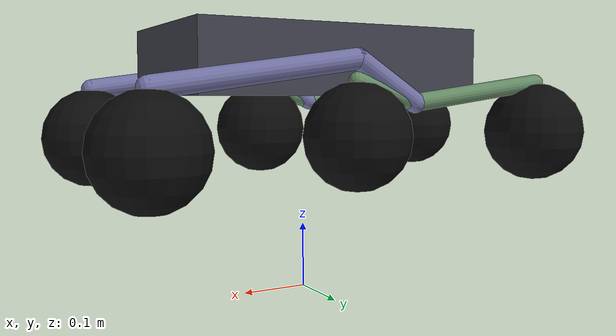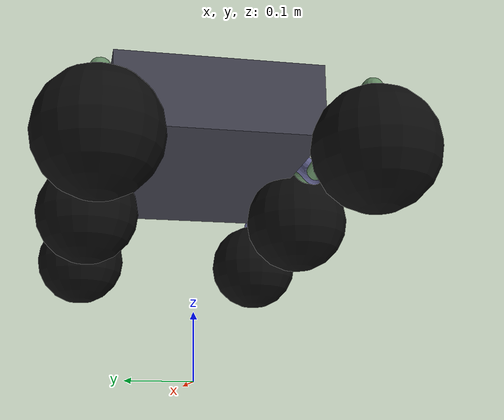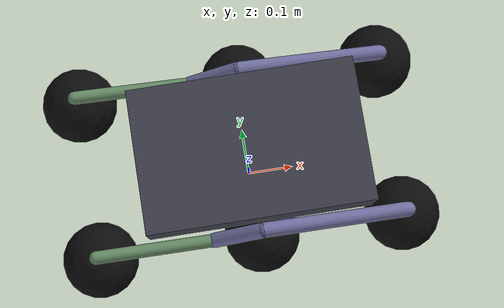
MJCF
<mujoco model="rocker_bogie_3d_diff">
  <compiler angle="degree" inertiafromgeom="true" autolimits="true"/>
  <option timestep="0.002" gravity="0 0 -9.81" solver="Newton" iterations="120"/>

  <default>
    <geom condim="4" friction="1.3 0.01 0.0001" solref="0.004 1" solimp="0.95 0.99 0.001"
          contype="0" conaffinity="0"/>
    <joint damping="2" armature="0.02" limited="false"/>
  </default>

  <asset>
    <material name="mat_chassis" rgba="0.25 0.25 0.30 1"/>
    <material name="mat_rocker"  rgba="0.45 0.45 0.65 1"/>
    <material name="mat_bogie"   rgba="0.40 0.55 0.40 1"/>
    <material name="mat_wheel"   rgba="0.05 0.05 0.05 1"/>
    <material name="mat_skid"    rgba="0.20 0.20 0.20 0.6"/>
  </asset>

  <worldbody>
    <body name="chassis" pos="0 0 0.35">
      <joint name="slide_x" type="slide" axis="1 0 0" damping="1.0"/>
      <joint name="slide_y" type="slide" axis="0 1 0" damping="1.0"/>
      <joint name="slide_z" type="slide" axis="0 0 1" damping="2.0"/>

      <joint name="roll"  type="hinge" axis="1 0 0" damping="4.0" limited="true" range="-20 20"/>
      <joint name="pitch" type="hinge" axis="0 1 0" damping="4.0" limited="true" range="-20 20"/>
      <joint name="yaw"   type="hinge" axis="0 0 1" damping="1.0"/>

      <inertial pos="0 0 -0.03" mass="8.0" diaginertia="0.25 0.55 0.55"/>

      <!-- кузов визуальный, НЕ контактит -->
      <geom type="box" size="0.22 0.14 0.05" material="mat_chassis"
            contype="0" conaffinity="0"/>

      <!-- ========== LEFT ========== -->
      <body name="rocker_L" pos="0 0.16 0">
        <joint name="rocker_L_j" type="hinge" axis="0 1 0" damping="8" limited="true" range="-35 35"/>

        <geom type="capsule" fromto="0 0 0   0.288 0 -0.04" size="0.015" density="500"
              material="mat_rocker" contype="0" conaffinity="0"/>
        <geom type="capsule" fromto="0 0 0   -0.096 0 -0.06" size="0.015" density="500"
              material="mat_rocker" contype="0" conaffinity="0"/>

        <body name="wheel_front_L" pos="0.288 0 -0.116">
          <joint name="wheel_front_L_j" type="hinge" axis="0 1 0" damping="0.4" armature="0.01"/>
          <geom type="sphere" size="0.076" material="mat_wheel"
                contype="1" conaffinity="1"/>
        </body>

        <body name="bogie_L" pos="-0.096 0 -0.06">
          <joint name="bogie_L_j" type="hinge" axis="0 1 0" damping="10" limited="true" range="-70 70"/>

          <geom type="capsule" fromto="0 0 0   0.096 0 0.03" size="0.013" density="550"
                material="mat_bogie" contype="0" conaffinity="0"/>
          <geom type="capsule" fromto="0 0 0   -0.232 0 0.03" size="0.013" density="550"
                material="mat_bogie" contype="0" conaffinity="0"/>

          <body name="wheel_mid_L" pos="0.096 0 -0.046">
            <joint name="wheel_mid_L_j" type="hinge" axis="0 1 0" damping="0.4" armature="0.01"/>
            <geom type="sphere" size="0.076" material="mat_wheel"
                  contype="1" conaffinity="1"/>
          </body>

          <body name="wheel_rear_L" pos="-0.232 0 -0.046">
            <joint name="wheel_rear_L_j" type="hinge" axis="0 1 0" damping="0.4" armature="0.01"/>
            <geom type="sphere" size="0.076" material="mat_wheel"
                  contype="1" conaffinity="1"/>
          </body>
        </body>
      </body>

      <!-- ========== RIGHT ========== -->
      <body name="rocker_R" pos="0 -0.16 0">
        <joint name="rocker_R_j" type="hinge" axis="0 1 0" damping="8" limited="true" range="-35 35"/>

        <geom type="capsule" fromto="0 0 0   0.288 0 -0.04" size="0.015" density="500"
              material="mat_rocker" contype="0" conaffinity="0"/>
        <geom type="capsule" fromto="0 0 0   -0.096 0 -0.06" size="0.015" density="500"
              material="mat_rocker" contype="0" conaffinity="0"/>

        <body name="wheel_front_R" pos="0.288 0 -0.116">
          <joint name="wheel_front_R_j" type="hinge" axis="0 1 0" damping="0.4" armature="0.01"/>
          <geom type="sphere" size="0.076" material="mat_wheel"
                contype="1" conaffinity="1"/>
        </body>

        <body name="bogie_R" pos="-0.096 0 -0.06">
          <joint name="bogie_R_j" type="hinge" axis="0 1 0" damping="10" limited="true" range="-70 70"/>

          <geom type="capsule" fromto="0 0 0   0.096 0 0.03" size="0.013" density="550"
                material="mat_bogie" contype="0" conaffinity="0"/>
          <geom type="capsule" fromto="0 0 0   -0.232 0 0.03" size="0.013" density="550"
                material="mat_bogie" contype="0" conaffinity="0"/>

          <body name="wheel_mid_R" pos="0.096 0 -0.046">
            <joint name="wheel_mid_R_j" type="hinge" axis="0 1 0" damping="0.4" armature="0.01"/>
            <geom type="sphere" size="0.076" material="mat_wheel"
                  contype="1" conaffinity="1"/>
          </body>

          <body name="wheel_rear_R" pos="-0.232 0 -0.046">
            <joint name="wheel_rear_R_j" type="hinge" axis="0 1 0" damping="0.4" armature="0.01"/>
            <geom type="sphere" size="0.076" material="mat_wheel"
                  contype="1" conaffinity="1"/>
          </body>
        </body>
      </body>

    </body>
  </worldbody>

  <actuator>
    <position name="diff_pitch" joint="pitch" kp="900" kv="80" forcerange="-250 250"/>
    <position name="diff_roll"  joint="roll"  kp="900" kv="80" forcerange="-250 250"/>

    <motor joint="wheel_front_L_j" gear="40"/>
    <motor joint="wheel_mid_L_j"   gear="40"/>
    <motor joint="wheel_rear_L_j"  gear="40"/>
    <motor joint="wheel_front_R_j" gear="40"/>
    <motor joint="wheel_mid_R_j"   gear="40"/>
    <motor joint="wheel_rear_R_j"  gear="40"/>
  </actuator>
</mujoco>
